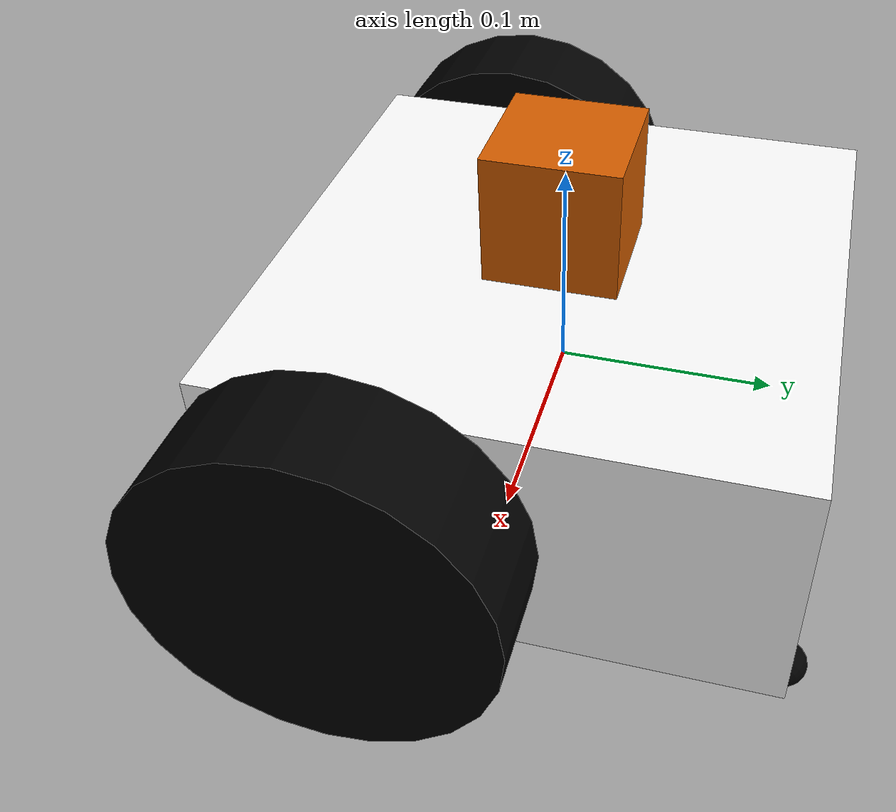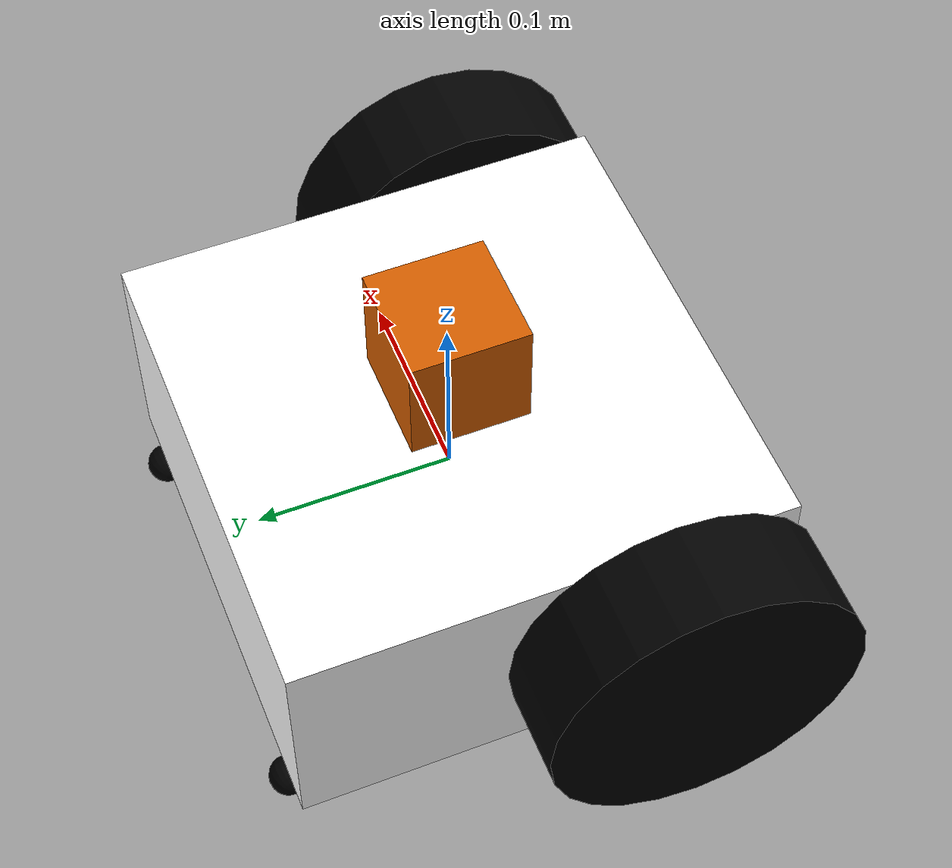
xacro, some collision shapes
<?xml version="1.0"?>
<robot name="mrl" xmlns:xacro="http://www.ros.org/wiki/xacro">

<xacro:property name="base_l" value="0.25" />
<xacro:property name="base_w" value="0.25" />
<xacro:property name="base_h" value="0.12" /> <!--base height-->

<xacro:property name="wheel_r" value="0.08" />
<xacro:property name="wheel_l" value="0.05" /> <!--wheel thickness-->

<xacro:property name="test" value="${wheel_r+wheel_l}" />

<!-- Import all Gazebo-customization elements, including Gazebo colors -->
  <!--xacro:include filename="$(find mrl1_description)/urdf/rrbot.gazebo" /-->
  <!-- Import Rviz colors -->
  <xacro:include filename="$(find mrl1_description)/urdf/materials.xacro" />

<!-- base_footprint is a fictitious link(frame) that is on the ground right below base_link origin,
             navigation stack depends on this frame -->

<link name="base_link">
    <visual>
      <geometry>
        <box size="0.25 0.25 0.12"/>
      </geometry>
     <origin rpy="0 0 0" xyz="0 0 0"/> <!--forward is 'y', up is 'z'-->
     <material name="white">
        <color rgba="1 1 1 1"/>
      </material>
    </visual>

    <collision>
      <geometry>
        <box size="0.25 0.25 0.12"/>
      </geometry>
    </collision>

    <inertial>
      <mass value="3.6"/>
      <!--inertia ixx="${36*(base_l*base_l+base_h*base_h)/12}" ixy="0.0" ixz="0.0" iyy="${36*(base_w*base_w+base_h*base_h)/12}" iyz="0.0" izz="${36*(base_l*base_l+base_w*base_w)/12}"/-->
      <inertia ixx="0.2307" ixy="0.0" ixz="0.0" iyy="0.2307" iyz="0.0" izz="0.2307"/>
    </inertial>

  </link>

<!--Back Caster(left)-->
<link name="caster_left">
    <visual>
      <geometry>
        <sphere radius="0.01"/>
      </geometry>
	<origin xyz="0 0 0"/> <!--this is relative to the joint frame defined in 'joint' tag-->
     <material name="black">
        <color rgba="0 0 0 1"/>
      </material>
    </visual>

    <collision>
     <origin xyz="0 0 0"/>
      <geometry>
        <sphere radius="0.01"/>
      </geometry>
    </collision>

    <inertial>
      <mass value="0.2"/>
      <inertia ixx="0.001" ixy="0.0" ixz="0.0" iyy="0.001" iyz="0.0" izz="0.001"/>
    </inertial>
  </link>

  <joint name="left_caster_joint" type="continuous">
  <axis xyz="0 0 1"/>
    <parent link="base_link"/>
    <child link="caster_left"/>
     <origin xyz="0.1 0.124 -0.07" rpy="0 1.57 0"/> <!--this is relative to the 'parent' frame-->
  </joint>

<!--Back Caster(right)-->
<link name="caster_right">
    <visual>
      <geometry>
        <sphere radius="0.01"/>
      </geometry>
	<origin xyz="0 0 0"/> <!--this is relative to the joint frame defined in 'joint' tag-->
     <material name="black">
        <color rgba="0 0 0 1"/>
      </material>
    </visual>

    <collision>
     <origin xyz="0 0 0"/>
      <geometry>
        <sphere radius="0.01"/>
      </geometry>
    </collision>

    <inertial>
      <mass value="0.2"/>
      <inertia ixx="0.000001" ixy="0.0" ixz="0.0" iyy="0.000001" iyz="0.0" izz="0.000001"/>
    </inertial>
  </link>

  <joint name="right_caster_joint" type="continuous">
  <axis xyz="0 0 1"/>
    <parent link="base_link"/>
    <child link="caster_right"/>
     <origin xyz="-0.1 0.124 -0.07" rpy="0 1.57 0"/> <!--this is relative to the 'parent' frame-->
  </joint>

<!--left wheel-->
<link name="left_wheel">
    <visual>
      <geometry>
        <cylinder length="0.05" radius="0.08"/>
      </geometry>
	<origin xyz="0 0 0"/>
     <material name="black">
        <color rgba="0 0 0 1"/>
      </material>
    </visual>

    <collision>
     <origin xyz="0 0 0"/>
      <geometry>
        <cylinder length="0.05" radius="0.08"/>
      </geometry>
    </collision>

    <inertial>
      <mass value="1"/>
      <!--inertia ixx="${0.1*(3*wheel_r^2+wheel_h^2)/12}" ixy="0.0" ixz="0.0" iyy="${0.1*(3*wheel_r^2+wheel_h^2)/12}" iyz="0.0" izz="${0.1*wheel_r^2/2}"/-->
<inertia ixx="0.0032" ixy="0.0" ixz="0.0" iyy="0.00368" iyz="0.0" izz="0.00368"/>
    </inertial>
  </link>

  <joint name="left_wheel_joint" type="continuous">
  <axis xyz="0 0 1"/>
    <parent link="base_link"/>
    <child link="left_wheel"/>
     <origin xyz="0.151 -0.06 0" rpy="0 1.57 0"/>
  </joint>

<!--right wheel-->
<link name="right_wheel">
    <visual>
      <geometry>
        <cylinder length="0.05" radius="0.08"/>
      </geometry>
	<origin xyz="0 0 0"/>
    <material name="black"/>
    </visual>

   <collision>
    <origin xyz="0 0 0"/>
      <geometry>
        <cylinder length="0.01" radius="0.08"/>
      </geometry>
    </collision>

    <inertial>
      <mass value="1"/>
      <!--inertia ixx="${0.1*(3*wheel_r^2+wheel_h^2)/12}" ixy="0.0" ixz="0.0" iyy="${0.1*(3*wheel_r^2+wheel_h^2)/12}" iyz="0.0" izz="${0.1*wheel_r^2/2}"/-->
     <inertia ixx="0.0032" ixy="0.0" ixz="0.0" iyy="0.00368" iyz="0.0" izz="0.00368"/>
    </inertial>
  </link>

  <joint name="right_wheel_joint" type="continuous">
  <axis xyz="0 0 1"/>
    <parent link="base_link"/>
    <child link="right_wheel"/>
     <origin xyz="-0.151 -0.06 0" rpy="0 1.57 0"/>
  </joint>

<!--hokuyo laser-->
  <link name="hokuyo_link">
    <visual>
    <geometry>
        <mesh filename="package://mrl1_description/meshes/hokuyo.dae"/>
      </geometry>
    <origin xyz="0 0 0" rpy="0 0 0"/>
    </visual>

    <collision>
      <origin xyz="0 0 0"/>
      <geometry>
	<box size="0.06 0.06 0.06"/>
      </geometry>
    </collision>

    <inertial>
      <mass value="0.1" />
      <origin xyz="0 0 0" rpy="0 0 0"/>
      <inertia ixx="0.001" ixy="0" ixz="0" iyy="0.001" iyz="0" izz="0.001" />
    </inertial>
  </link>

  <joint name="hokuyo_joint" type="fixed">
    <origin xyz="0 0 0.09" rpy="0 0 -1.57"/>
    <parent link="base_link"/>
    <child link="hokuyo_link"/>
  </joint>

<!--Transmission to left motor-->
<transmission name="tran1">
    <type>transmission_interface/SimpleTransmission</type>
    <joint name="left_wheel_joint"/>
    <actuator name="left_motor">
      <hardwareInterface>EffortJointInterface</hardwareInterface>
      <mechanicalReduction>1</mechanicalReduction>
    </actuator>
  </transmission>

<!--Transmission to right motor-->
<transmission name="tran2">
    <type>transmission_interface/SimpleTransmission</type>
    <joint name="right_wheel_joint"/>
    <actuator name="right_motor">
      <hardwareInterface>EffortJointInterface</hardwareInterface>
      <mechanicalReduction>1</mechanicalReduction>
    </actuator>
  </transmission>

<!--GAZEBO COMPONENTS-->

  <!-- ros_control plugin -->
  <gazebo>
    <plugin name="gazebo_ros_control" filename="libgazebo_ros_control.so">
      <robotNamespace>/mrl3</robotNamespace> <!--CHANGE HERE FOR DIFFERENT INSTANCES!!-->
    </plugin>
  </gazebo>

  <!-- Base Footprint -->
  <gazebo reference="base_footprint">
    <material>Gazebo/white</material>
  </gazebo>

  <!-- Base Link -->
  <gazebo reference="base_link">
    <material>Gazebo/white</material>
  </gazebo>

  <!-- Back Caster(Left) -->
  <gazebo reference="caster_left">
    <material>Gazebo/white</material>
    <mu1>0.5</mu1>
    <mu2>0.5</mu2>
  </gazebo>

  <!-- Back Caster(right) -->
  <gazebo reference="caster_right">
    <material>Gazebo/white</material>
    <mu1>0.5</mu1>
    <mu2>0.5</mu2>
  </gazebo>

  <!-- Left Wheel -->
  <gazebo reference="left_wheel">
    <material>Gazebo/black</material>
    <mu1>0.5</mu1>
    <mu2>0.5</mu2>
    <dampingFactor>0.4</dampingFactor>
  </gazebo>

  <!-- Right Wheel -->
  <gazebo reference="right_wheel">
    <material>Gazebo/black</material>
     <mu1>0.5</mu1>
     <mu2>0.5</mu2>
     <dampingFactor>0.4</dampingFactor>
  </gazebo>

  <!-- hokuyo -->
  <gazebo reference="hokuyo_link">
    <sensor type="ray" name="head_hokuyo_sensor">
      <pose>0 0 0 0 0 0</pose>
      <visualize>true</visualize>
      <update_rate>40</update_rate>
      <ray>
        <scan>
          <horizontal>
            <samples>40</samples>
            <resolution>1</resolution>
            <min_angle>-1.570796</min_angle>
            <max_angle>1.570796</max_angle>
          </horizontal>
        </scan>
        <range>
          <min>0.1</min>
          <max>3.0</max>
          <resolution>0.01</resolution>
        </range>
        <noise>
          <type>gaussian</type>
          <mean>0.0</mean>
          <stddev>0.01</stddev>
        </noise>
      </ray>
      <plugin name="gazebo_ros_head_hokuyo_controller" filename="libgazebo_ros_laser.so">
        <topicName>/mrl3/laser/scan</topicName><!--CHANGE HERE FOR DIFFERENT INSTANCES!!-->
        <frameName>hokuyo_link</frameName>
      </plugin>
    </sensor>
  </gazebo>

</robot>

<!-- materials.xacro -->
<robot>

  <material name="black">
    <color rgba="0.0 0.0 0.0 1.0"/>
  </material>

  <material name="blue">
    <color rgba="0.0 0.0 0.8 1.0"/>
  </material>

  <material name="green">
    <color rgba="0.0 0.8 0.0 1.0"/>
  </material>

  <material name="grey">
    <color rgba="0.2 0.2 0.2 1.0"/>
  </material>

  <material name="red">
    <color rgba="0.8 0.0 0.0 1.0"/>
  </material>

  <material name="white">
    <color rgba="1.0 1.0 1.0 1.0"/>
  </material>

</robot>
